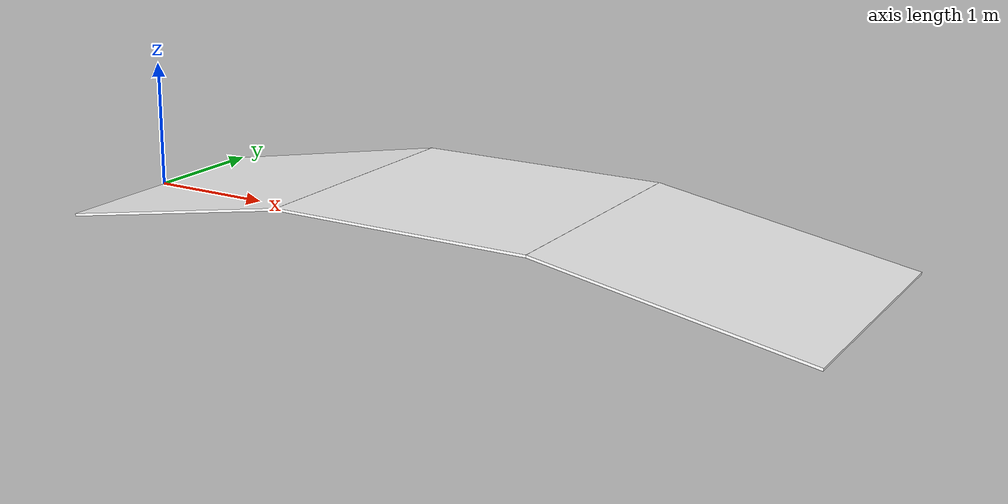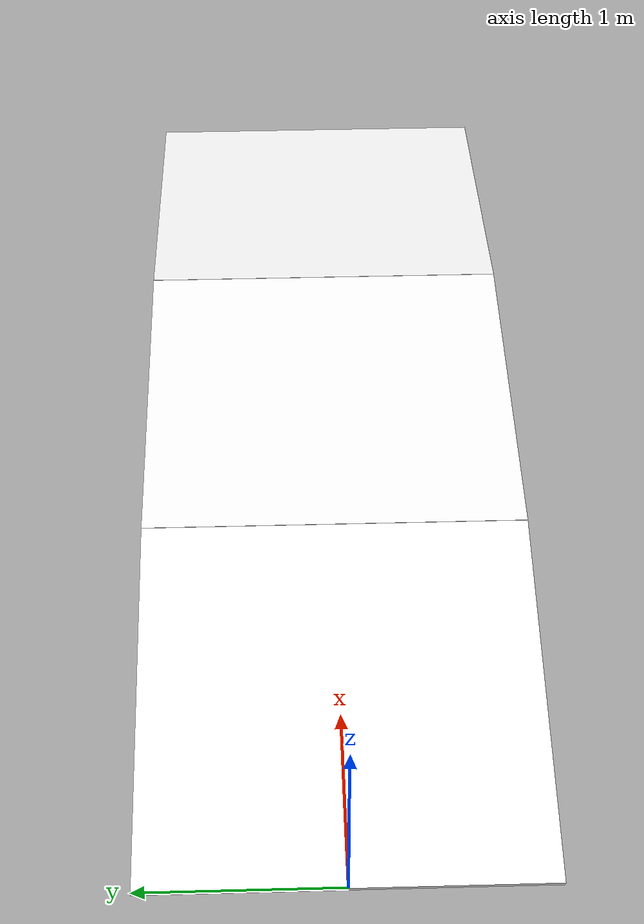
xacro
<?xml version="1.0"?>
<robot xmlns:xacro="http://www.ros.org/wiki/xacro" name="ramp_assembled">

    <xacro:include filename="$(find obstacles)/urdf/primitives/colors.xacro"/>
    <xacro:include filename="$(find obstacles)/urdf/primitives/ramp.xacro"/>

    <link name="base_link">
    </link>

    <xacro:property name="seg1_angle" value="10"/>
    <xacro:property name="seg1_length" value="2"/>
    <xacro:property name="seg1_width" value="2"/>
    <xacro:property name="seg1_offset_x" value="0.0"/>
    <xacro:property name="seg1_offset_z" value="0.0"/>

    <xacro:property name="seg2_angle" value="0"/>
    <xacro:property name="seg2_length" value="2"/>
    <xacro:property name="seg2_width" value="2"/>
    <xacro:property name="seg2_offset_x" value="${seg1_offset_x + seg1_length*cos(seg1_angle*pi/180)}"/>
    <xacro:property name="seg2_offset_z" value="${seg1_offset_z + seg1_length*sin(seg1_angle*pi/180)}"/>

    <xacro:property name="seg3_angle" value="-10"/>
    <xacro:property name="seg3_length" value="2"/>
    <xacro:property name="seg3_width" value="2"/>
    <xacro:property name="seg3_offset_x" value="${seg2_offset_x + seg2_length*cos(seg2_angle*pi/180)}"/>
    <xacro:property name="seg3_offset_z" value="${seg2_offset_z + seg2_length*sin(seg2_angle*pi/180)}"/>

    <xacro:ramp_segment postfix="seg1" angle="${seg1_angle}" length="${seg1_length}" width="${seg1_width}" offset_x="${seg1_offset_x}" offset_z="${seg1_offset_z}"/>
    <xacro:ramp_segment postfix="seg2" angle="${seg2_angle}" length="${seg2_length}" width="${seg2_width}" offset_x="${seg2_offset_x}" offset_z="${seg2_offset_z}"/>
    <xacro:ramp_segment postfix="seg3" angle="${seg3_angle}" length="${seg3_length}" width="${seg3_width}" offset_x="${seg3_offset_x}" offset_z="${seg3_offset_z}"/>

</robot>

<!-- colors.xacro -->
<robot xmlns:xacro="http://www.ros.org/wiki/xacro" name="colors">
   <material name="white_opaque">
        <color rgba="1 1 1 1"/>
    </material>
</robot>

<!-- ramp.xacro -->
<robot xmlns:xacro="http://www.ros.org/wiki/xacro" name="ramp">

    <xacro:macro name="ramp_segment" params="postfix angle length width offset_x offset_z">

        <xacro:property name="thickness" value="0.02"/>
        <xacro:property name="theta" value="${-angle*pi/180}"/>
        <link name="ramp_${postfix}">
            <visual>
                <geometry>
                    <box size="${length} ${width} ${thickness}"/>
                </geometry>
                <material name="white_opaque"/>
            </visual>
            <collision>
                <geometry>
                    <box size="${length} ${width} ${thickness}"/>
                </geometry>
            </collision>
        </link>
        <joint name="ramp_joint_${postfix}" type="fixed">
            <parent link="base_link"/>
            <child link="ramp_${postfix}"/>
            <origin xyz="${offset_x + length*cos(theta)/2} 0 ${offset_z - length*sin(theta)/2 - thickness*cos(theta)/2}" rpy="0 ${theta} 0"/>
        </joint>
    </xacro:macro>

</robot>
